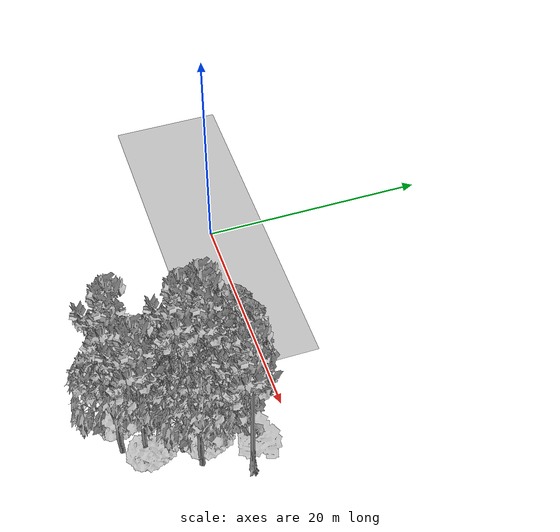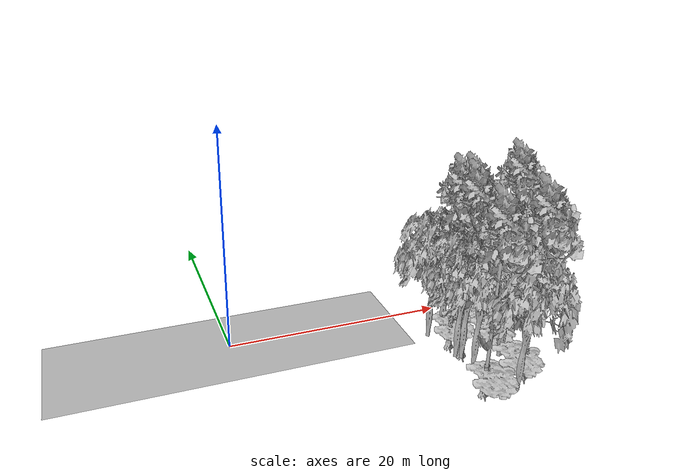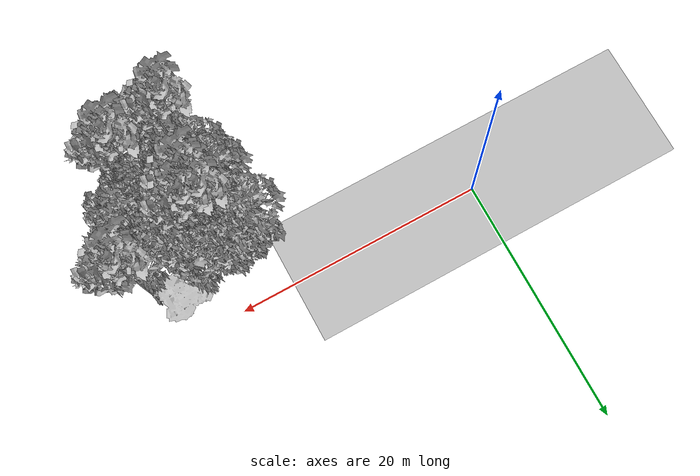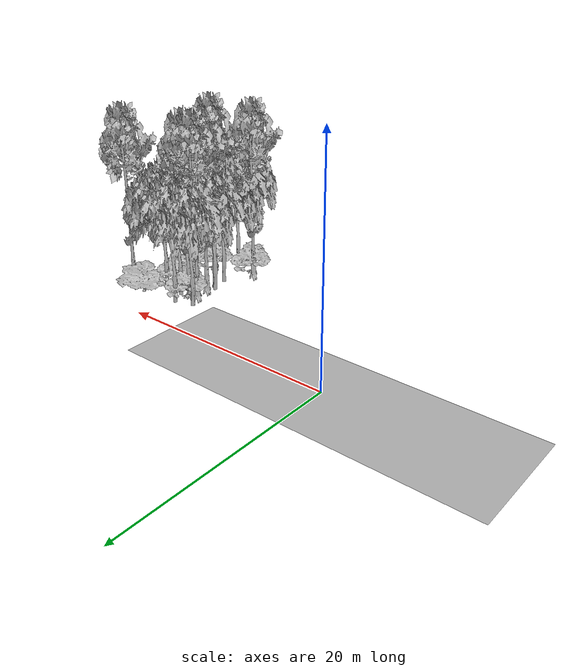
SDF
<sdf version="1.7">
 <world name="default">
  <model name="ground_plane">
   <static>1</static>
   <link name="link">
    <collision name="collision">
     <pose>-50 0 0 0 -0 0</pose>
     <geometry><plane><normal>0 0 1</normal><size>100 100</size></plane></geometry>
     <surface><contact><ode><min_depth>0.01</min_depth><max_vel>0</max_vel></ode></contact></surface>
    </collision>
    <visual name="grass">
     <cast_shadows>0</cast_shadows>
     <geometry>
      <mesh>
       <scale>0.5814285714285714 0.18142857142857144 0.1</scale>
       <uri>file://grass_plane/meshes/grass_plane.dae</uri>
      </mesh>
     </geometry>
    </visual>
   </link>
  </model>
  <model name="Tree 3">
   <static>1</static>
   <pose>21.59603311105822 -8.828315092953982 0 1.57079 -0 0</pose>
   <link name="link">
    <collision name="collision">
     <geometry><mesh><scale>3.5 5 3.5</scale><uri>model://tree_2/meshes/tree_2.obj</uri></mesh></geometry>
    </collision>
    <visual name="visual">
     <geometry><mesh><scale>3.5 5 3.5</scale><uri>model://tree_2/meshes/tree_2.obj</uri></mesh></geometry>
    </visual>
   </link>
  </model>
  <model name="Tree 45">
   <static>1</static>
   <pose>25.172235003423623 -4.0417916910892 0 1.57079 -0 0</pose>
   <link name="link">
    <collision name="collision">
     <geometry><mesh><scale>3.5 5 3.5</scale><uri>model://tree_9/meshes/tree_9.obj</uri></mesh></geometry>
    </collision>
    <visual name="visual">
     <geometry><mesh><scale>3.5 5 3.5</scale><uri>model://tree_9/meshes/tree_9.obj</uri></mesh></geometry>
    </visual>
   </link>
  </model>
  <model name="Tree 97">
   <static>1</static>
   <pose>19.583527401719422 -5.881549785066554 0 1.57079 -0 0</pose>
   <link name="link">
    <collision name="collision">
     <geometry><mesh><scale>3.5 5 3.5</scale><uri>model://tree_9/meshes/tree_9.obj</uri></mesh></geometry>
    </collision>
    <visual name="visual">
     <geometry><mesh><scale>3.5 5 3.5</scale><uri>model://tree_9/meshes/tree_9.obj</uri></mesh></geometry>
    </visual>
   </link>
  </model>
  <model name="Tree 106">
   <static>1</static>
   <pose>17.284565137650915 -4.104656485704842 0 1.57079 -0 0</pose>
   <link name="link">
    <collision name="collision">
     <geometry><mesh><scale>3.5 5 3.5</scale><uri>model://tree_2/meshes/tree_2.obj</uri></mesh></geometry>
    </collision>
    <visual name="visual">
     <geometry><mesh><scale>3.5 5 3.5</scale><uri>model://tree_2/meshes/tree_2.obj</uri></mesh></geometry>
    </visual>
   </link>
  </model>
  <model name="Tree 118">
   <static>1</static>
   <pose>23.469241781858372 -7.728007768536619 0 1.57079 -0 0</pose>
   <link name="link">
    <collision name="collision">
     <geometry><mesh><scale>3.5 5 3.5</scale><uri>model://tree_2/meshes/tree_2.obj</uri></mesh></geometry>
    </collision>
    <visual name="visual">
     <geometry><mesh><scale>3.5 5 3.5</scale><uri>model://tree_2/meshes/tree_2.obj</uri></mesh></geometry>
    </visual>
   </link>
  </model>
  <model name="Tree 152">
   <static>1</static>
   <pose>17.768766635602134 -12.674822383898766 0 1.57079 -0 0</pose>
   <link name="link">
    <collision name="collision">
     <geometry><mesh><scale>3.5 5 3.5</scale><uri>model://tree_9/meshes/tree_9.obj</uri></mesh></geometry>
    </collision>
    <visual name="visual">
     <geometry><mesh><scale>3.5 5 3.5</scale><uri>model://tree_9/meshes/tree_9.obj</uri></mesh></geometry>
    </visual>
   </link>
  </model>
  <model name="Tree 217">
   <static>1</static>
   <pose>19.09712178238553 -5.363023419824218 0 1.57079 -0 0</pose>
   <link name="link">
    <collision name="collision">
     <geometry><mesh><scale>3.5 5 3.5</scale><uri>model://tree_2/meshes/tree_2.obj</uri></mesh></geometry>
    </collision>
    <visual name="visual">
     <geometry><mesh><scale>3.5 5 3.5</scale><uri>model://tree_2/meshes/tree_2.obj</uri></mesh></geometry>
    </visual>
   </link>
  </model>
  <model name="Tree 231">
   <static>1</static>
   <pose>18.86972513244035 -7.403484341774524 0 1.57079 -0 0</pose>
   <link name="link">
    <collision name="collision">
     <geometry><mesh><scale>3.5 5 3.5</scale><uri>model://tree_9/meshes/tree_9.obj</uri></mesh></geometry>
    </collision>
    <visual name="visual">
     <geometry><mesh><scale>3.5 5 3.5</scale><uri>model://tree_9/meshes/tree_9.obj</uri></mesh></geometry>
    </visual>
   </link>
  </model>
  <model name="Tree 240">
   <static>1</static>
   <pose>22.146252274456117 -5.488572102967458 0 1.57079 -0 0</pose>
   <link name="link">
    <collision name="collision">
     <geometry><mesh><scale>3.5 5 3.5</scale><uri>model://tree_2/meshes/tree_2.obj</uri></mesh></geometry>
    </collision>
    <visual name="visual">
     <geometry><mesh><scale>3.5 5 3.5</scale><uri>model://tree_2/meshes/tree_2.obj</uri></mesh></geometry>
    </visual>
   </link>
  </model>
  <model name="Tree 250">
   <static>1</static>
   <pose>18.62389390392042 -9.552202354429937 0 1.57079 -0 0</pose>
   <link name="link">
    <collision name="collision">
     <geometry><mesh><scale>3.5 5 3.5</scale><uri>model://tree_2/meshes/tree_2.obj</uri></mesh></geometry>
    </collision>
    <visual name="visual">
     <geometry><mesh><scale>3.5 5 3.5</scale><uri>model://tree_2/meshes/tree_2.obj</uri></mesh></geometry>
    </visual>
   </link>
  </model>
  <model name="Tree 265">
   <static>1</static>
   <pose>21.684730317243734 -11.25063648163564 0 1.57079 -0 0</pose>
   <link name="link">
    <collision name="collision">
     <geometry><mesh><scale>4 2.5 4</scale><uri>model://tree_1/meshes/tree_1.obj</uri></mesh></geometry>
    </collision>
    <visual name="visual">
     <geometry><mesh><scale>4 2.5 4</scale><uri>model://tree_1/meshes/tree_1.obj</uri></mesh></geometry>
    </visual>
   </link>
  </model>
  <model name="Tree 268">
   <static>1</static>
   <pose>18.0047458368323 -7.7238811587121114 0 1.57079 -0 0</pose>
   <link name="link">
    <collision name="collision">
     <geometry><mesh><scale>3.5 5 3.5</scale><uri>model://tree_2/meshes/tree_2.obj</uri></mesh></geometry>
    </collision>
    <visual name="visual">
     <geometry><mesh><scale>3.5 5 3.5</scale><uri>model://tree_2/meshes/tree_2.obj</uri></mesh></geometry>
    </visual>
   </link>
  </model>
  <model name="Tree 296">
   <static>1</static>
   <pose>18.177856488304897 -12.888061121490441 0 1.57079 -0 0</pose>
   <link name="link">
    <collision name="collision">
     <geometry><mesh><scale>4 2.5 4</scale><uri>model://tree_1/meshes/tree_1.obj</uri></mesh></geometry>
    </collision>
    <visual name="visual">
     <geometry><mesh><scale>4 2.5 4</scale><uri>model://tree_1/meshes/tree_1.obj</uri></mesh></geometry>
    </visual>
   </link>
  </model>
  <model name="Tree 369">
   <static>1</static>
   <pose>19.684036617527255 -4.9540705196134365 0 1.57079 -0 0</pose>
   <link name="link">
    <collision name="collision">
     <geometry><mesh><scale>3.5 5 3.5</scale><uri>model://tree_2/meshes/tree_2.obj</uri></mesh></geometry>
    </collision>
    <visual name="visual">
     <geometry><mesh><scale>3.5 5 3.5</scale><uri>model://tree_2/meshes/tree_2.obj</uri></mesh></geometry>
    </visual>
   </link>
  </model>
  <model name="Tree 374">
   <static>1</static>
   <pose>20.320154521325804 -13.396985161456962 0 1.57079 -0 0</pose>
   <link name="link">
    <collision name="collision">
     <geometry><mesh><scale>3.5 5 3.5</scale><uri>model://tree_2/meshes/tree_2.obj</uri></mesh></geometry>
    </collision>
    <visual name="visual">
     <geometry><mesh><scale>3.5 5 3.5</scale><uri>model://tree_2/meshes/tree_2.obj</uri></mesh></geometry>
    </visual>
   </link>
  </model>
  <model name="Tree 375">
   <static>1</static>
   <pose>22.04915598896774 -6.738819235585927 0 1.57079 -0 0</pose>
   <link name="link">
    <collision name="collision">
     <geometry><mesh><scale>4 2.5 4</scale><uri>model://tree_1/meshes/tree_1.obj</uri></mesh></geometry>
    </collision>
    <visual name="visual">
     <geometry><mesh><scale>4 2.5 4</scale><uri>model://tree_1/meshes/tree_1.obj</uri></mesh></geometry>
    </visual>
   </link>
  </model>
  <model name="Tree 421">
   <static>1</static>
   <pose>18.53242192859328 -5.837839395405787 0 1.57079 -0 0</pose>
   <link name="link">
    <collision name="collision">
     <geometry><mesh><scale>3.5 5 3.5</scale><uri>model://tree_9/meshes/tree_9.obj</uri></mesh></geometry>
    </collision>
    <visual name="visual">
     <geometry><mesh><scale>3.5 5 3.5</scale><uri>model://tree_9/meshes/tree_9.obj</uri></mesh></geometry>
    </visual>
   </link>
  </model>
  <model name="Tree 441">
   <static>1</static>
   <pose>22.070674194971403 -11.772308250394772 0 1.57079 -0 0</pose>
   <link name="link">
    <collision name="collision">
     <geometry><mesh><scale>3.5 5 3.5</scale><uri>model://tree_9/meshes/tree_9.obj</uri></mesh></geometry>
    </collision>
    <visual name="visual">
     <geometry><mesh><scale>3.5 5 3.5</scale><uri>model://tree_9/meshes/tree_9.obj</uri></mesh></geometry>
    </visual>
   </link>
  </model>
  <model name="Tree 442">
   <static>1</static>
   <pose>19.043234479597942 -5.042298595791024 0 1.57079 -0 0</pose>
   <link name="link">
    <collision name="collision">
     <geometry><mesh><scale>4 2.5 4</scale><uri>model://tree_1/meshes/tree_1.obj</uri></mesh></geometry>
    </collision>
    <visual name="visual">
     <geometry><mesh><scale>4 2.5 4</scale><uri>model://tree_1/meshes/tree_1.obj</uri></mesh></geometry>
    </visual>
   </link>
  </model>
  <model name="Tree 443">
   <static>1</static>
   <pose>21.785735705338837 -8.80980393927914 0 1.57079 -0 0</pose>
   <link name="link">
    <collision name="collision">
     <geometry><mesh><scale>3.5 5 3.5</scale><uri>model://tree_2/meshes/tree_2.obj</uri></mesh></geometry>
    </collision>
    <visual name="visual">
     <geometry><mesh><scale>3.5 5 3.5</scale><uri>model://tree_2/meshes/tree_2.obj</uri></mesh></geometry>
    </visual>
   </link>
  </model>
  <model name="Tree 464">
   <static>1</static>
   <pose>23.084622989251898 -3.3499034706348354 0 1.57079 -0 0</pose>
   <link name="link">
    <collision name="collision">
     <geometry><mesh><scale>3 2 3</scale><uri>model://tree_3/meshes/tree_3.obj</uri></mesh></geometry>
    </collision>
    <visual name="visual">
     <geometry><mesh><scale>3 2 3</scale><uri>model://tree_3/meshes/tree_3.obj</uri></mesh></geometry>
    </visual>
   </link>
  </model>
  <model name="Tree 505">
   <static>1</static>
   <pose>18.975906311875605 -3.5598151014867803 0 1.57079 -0 0</pose>
   <link name="link">
    <collision name="collision">
     <geometry><mesh><scale>3.5 5 3.5</scale><uri>model://tree_2/meshes/tree_2.obj</uri></mesh></geometry>
    </collision>
    <visual name="visual">
     <geometry><mesh><scale>3.5 5 3.5</scale><uri>model://tree_2/meshes/tree_2.obj</uri></mesh></geometry>
    </visual>
   </link>
  </model>
  <model name="Tree 538">
   <static>1</static>
   <pose>18.397863890109846 -8.01772973574191 0 1.57079 -0 0</pose>
   <link name="link">
    <collision name="collision">
     <geometry><mesh><scale>3.5 5 3.5</scale><uri>model://tree_2/meshes/tree_2.obj</uri></mesh></geometry>
    </collision>
    <visual name="visual">
     <geometry><mesh><scale>3.5 5 3.5</scale><uri>model://tree_2/meshes/tree_2.obj</uri></mesh></geometry>
    </visual>
   </link>
  </model>
 </world>
</sdf>
